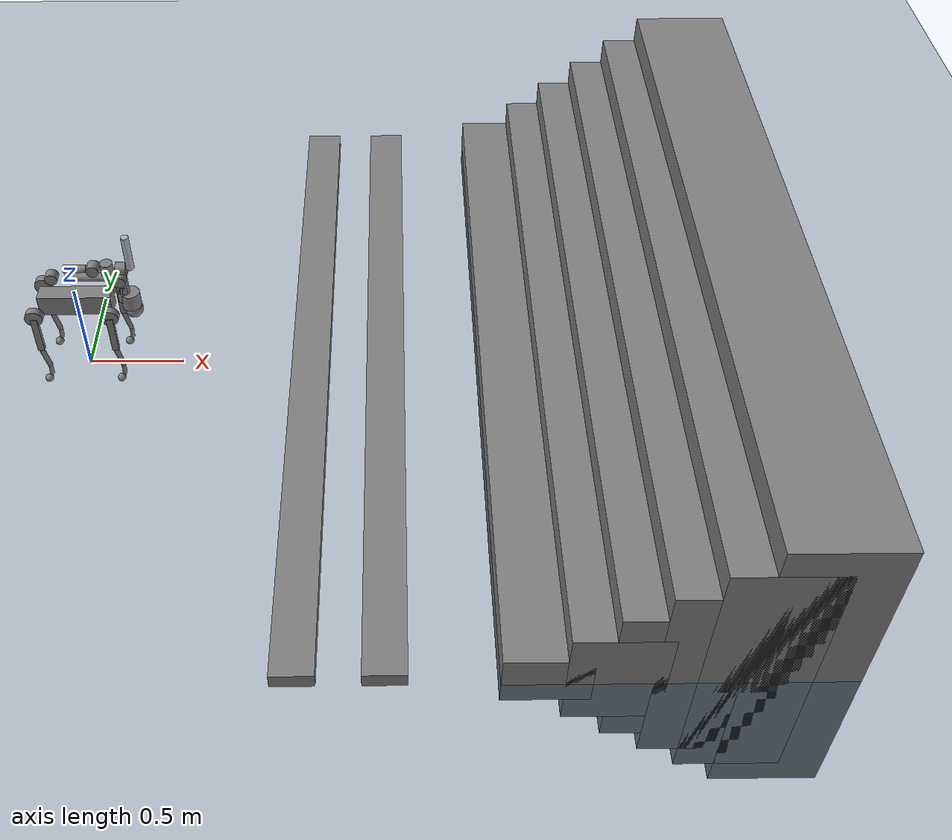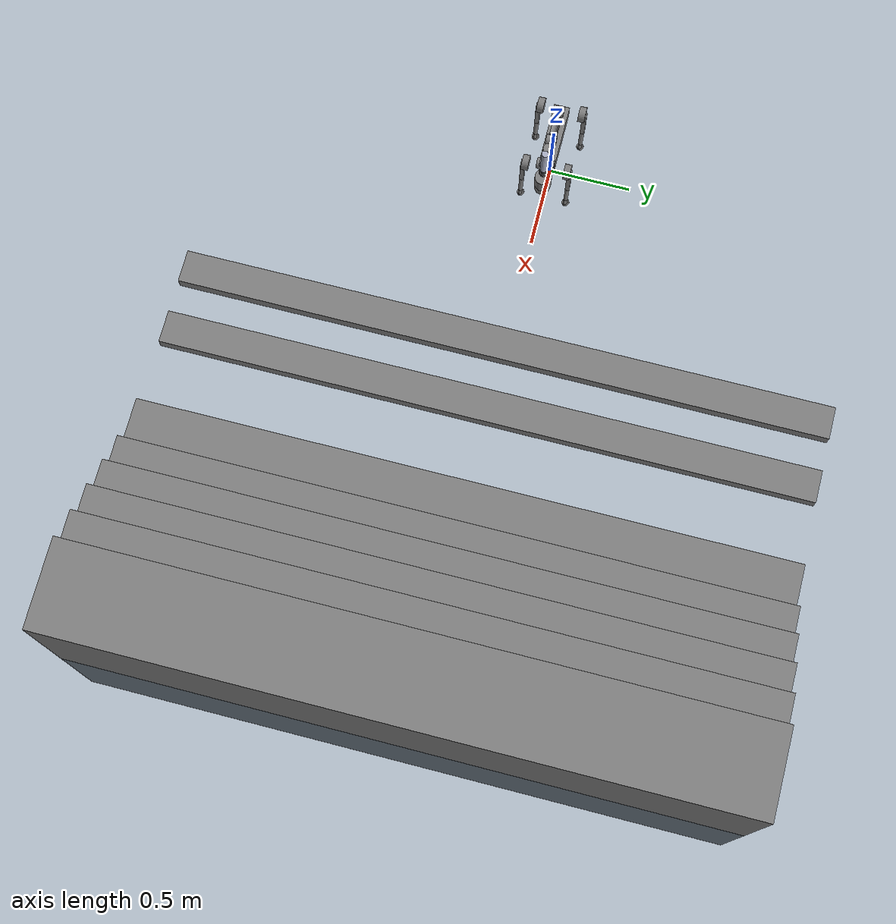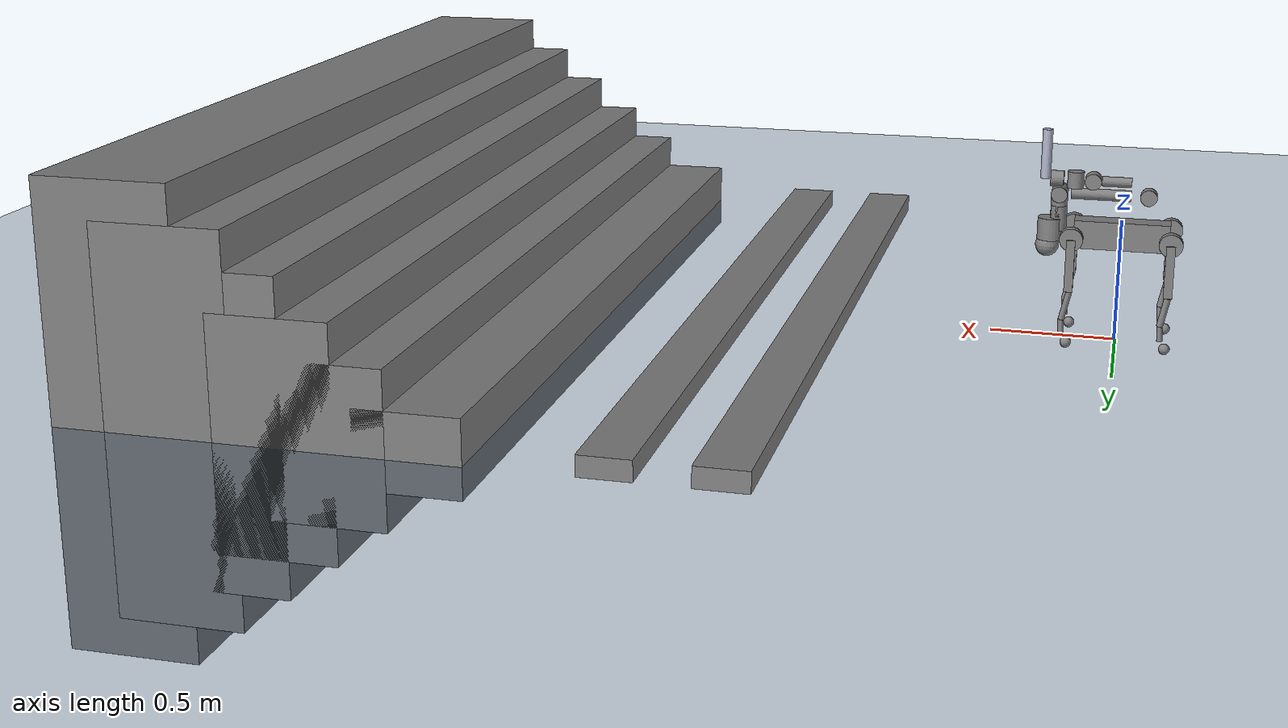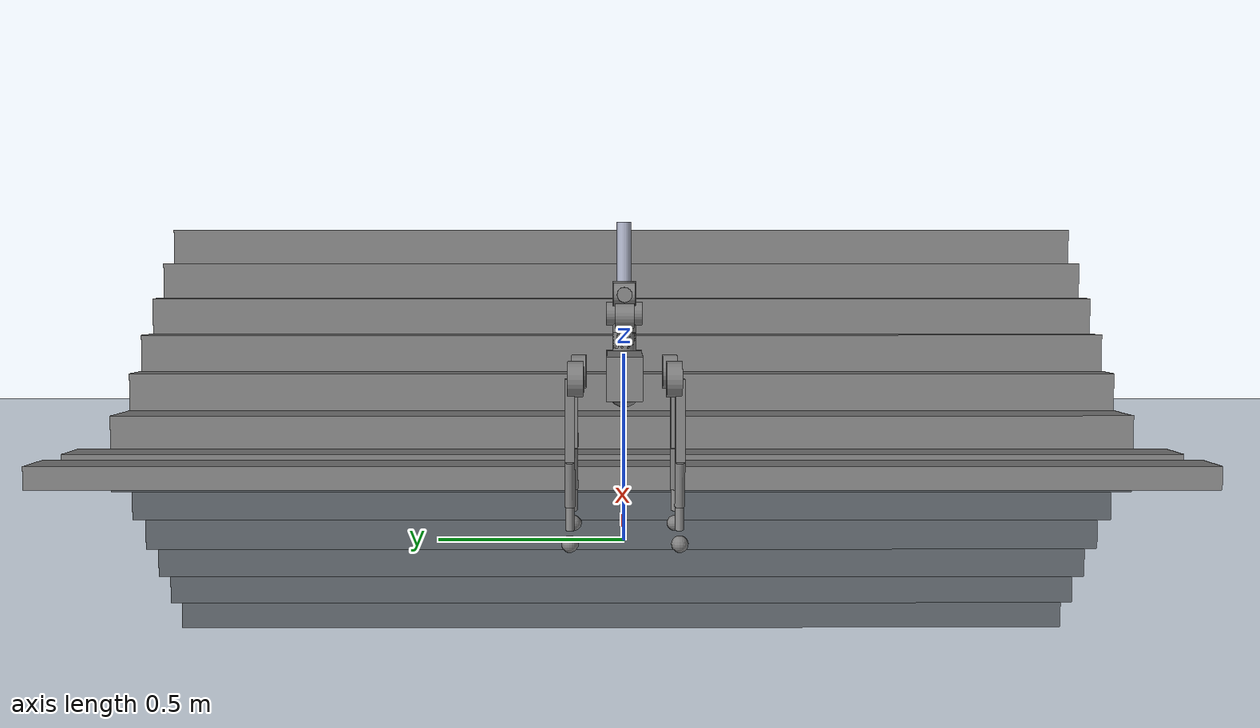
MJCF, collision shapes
<mujoco model="go2 scene">
  <include file="go2_arm_dof1.xml"/>

  <statistic center="0 0 0.1" extent="0.8"/>

  <visual>
    <headlight diffuse="0.6 0.6 0.6" ambient="0.3 0.3 0.3" specular="0 0 0"/>
    <rgba haze="0.15 0.25 0.35 1"/>
    <global azimuth="-130" elevation="-20"/>
  </visual>

  <asset>
    <texture type="skybox" builtin="gradient" rgb1="0.3 0.5 0.7" rgb2="0 0 0" width="512" height="3072"/>
    <texture type="2d" name="groundplane" builtin="checker" mark="edge" rgb1="0.2 0.3 0.4" rgb2="0.1 0.2 0.3"
      markrgb="0.8 0.8 0.8" width="300" height="300"/>
    <material name="groundplane" texture="groundplane" texuniform="true" texrepeat="5 5" reflectance="0.2"/>
  </asset>

  <worldbody>
    <light pos="0 0 1.5" dir="0 0 -1" directional="true"/>
    <geom name="floor" size="0 0 0.05" type="plane" material="groundplane" friction="1.0 0.005 0.0001"/>

    <geom pos="1.2 0 0.04" type="box"  size="0.1 2 0.04" quat="1.0 0 0 0"/>
    <geom pos="1.6 0 0.04" type="box"  size="0.1 2 0.04" quat="1.0 0 0 0"/>

    <geom pos="2.3 0 0.02" type="box"  size="0.2 2 0.15" quat="1.0 0 0 0"/>
    <geom pos="2.6 0 0.02" type="box"  size="0.22 2 0.3" quat="1.0 0 0 0"/>
    <geom pos="2.8 0 0.02" type="box"  size="0.23 2 0.45" quat="1.0 0 0 0"/>
    <geom pos="3 0 0.02" type="box"  size="0.24 2 0.6" quat="1.0 0 0 0"/>
    <geom pos="3.2 0 0.02" type="box"  size="0.25 2 0.75" quat="1.0 0 0 0"/>
    <geom pos="3.4 0 0.02" type="box"  size="0.26 2 0.9" quat="1.0 0 0 0"/>
  </worldbody>
</mujoco>

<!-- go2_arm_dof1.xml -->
<mujoco model="go2">
  <compiler angle="radian" meshdir="assets" autolimits="true" />

  <option cone="elliptic" impratio="100" />

  <default>

    <default class="go2">
      <geom friction="0.4" margin="0.001" condim="1"/>
      <joint axis="0 1 0" damping="0.1" armature="0.01" frictionloss="0.2"/>
      <motor ctrlrange="-23.7 23.7"/>

      <default class="abduction">
        <joint axis="1 0 0" range="-1.0472 1.0472"/>
      </default>

      <default class="hip">
        <default class="front_hip">
          <joint range="-1.5708 3.4907"/>
        </default>
        <default class="back_hip">
          <joint range="-0.5236 4.5379"/>
        </default>
      </default>

      <default class="knee">
        <joint range="-2.7227 -0.83776"/>
        <motor ctrlrange="-45.43 45.43"/>
      </default>

      <default class="visual">
        <geom type="mesh" contype="0" conaffinity="0" group="2"/>
      </default>
      <default class="collision">
        <geom group="3"/>
        <default class="foot">
          <geom size="0.022" pos="-0.002 0 -0.213" priority="1" condim="6"
            friction="1 0.02 0.01"/>
        </default>
      </default>

      <default class="arm1">
        <joint range="-2.61799387799 -2.61799387799"/>
        <motor ctrlrange="-45.43 45.43"/>
      </default>

      <default class="arm2">
        <joint range="0.0 2.96705972839"/>
        <motor ctrlrange="-45.43 45.43"/>
      </default>

      <default class="arm3">
        <joint range="-2.87979326579 0.0"/>
        <motor ctrlrange="-45.43 45.43"/>
      </default>

      <default class="arm4">
        <joint range="-1.51843644924 1.51843644924"/>
        <motor ctrlrange="-45.43 45.43"/>
      </default>

      <default class="arm5">
        <joint range="-1.34390352404 1.34390352404"/>
        <motor ctrlrange="-45.43 45.43"/>
      </default>

      <default class="arm6">
        <joint range="-2.79252680319 2.79252680319"/>
        <motor ctrlrange="-45.43 45.43"/>
      </default>
    </default>

  </default>

  <asset>
    <material name="metal" rgba=".9 .95 .95 1" />
    <material name="black" rgba="0 0 0 1" />
    <material name="white" rgba="1 1 1 1" />
    <material name="gray" rgba="0.671705 0.692426 0.774270 1" />

    <mesh file="z1_Link00.obj" />
    <mesh file="z1_Link01.obj" />
    <mesh file="z1_Link02.obj" />
    <mesh file="z1_Link03.obj" />
    <mesh file="z1_Link04.obj" />
    <mesh file="z1_Link05.obj" />
    <mesh file="z1_Link06.obj" />
    <mesh file="hip.obj" />
    <mesh file="thigh.obj" />
    <mesh file="thigh_mirror.obj" />
    <mesh file="trunk.obj" />

    <mesh file="base_0.obj" />
    <mesh file="base_1.obj" />
    <mesh file="base_2.obj" />
    <mesh file="base_3.obj" />
    <mesh file="base_4.obj" />
    <mesh file="hip_0.obj" />
    <mesh file="hip_1.obj" />
    <mesh file="thigh_0.obj" />
    <mesh file="thigh_1.obj" />
    <mesh file="thigh_mirror_0.obj" />
    <mesh file="thigh_mirror_1.obj" />
    <mesh file="calf_0.obj" />
    <mesh file="calf_1.obj" />
    <mesh file="calf_mirror_0.obj" />
    <mesh file="calf_mirror_1.obj" />
    <mesh file="foot.obj" />

  </asset>

  <worldbody>
    <body name="base_link" pos="0 0 0.445" childclass="go2">
      <inertial pos="0.021112 0 -0.005366" quat="-0.000543471 0.713435 -0.00173769 0.700719"
        mass="6.921"
        diaginertia="0.107027 0.0980771 0.0244531" />
      <freejoint />
      <geom mesh="base_0" material="black" class="visual" />
      <geom mesh="base_1" material="black" class="visual" />
      <geom mesh="base_2" material="black" class="visual" />
      <geom mesh="base_3" material="white" class="visual" />
      <geom mesh="base_4" material="gray" class="visual" />
      <geom size="0.1881 0.04675 0.057" type="box" class="collision" />
      <geom size="0.05 0.045" pos="0.285 0 0.01" type="cylinder" class="collision" />
      <geom size="0.047" pos="0.293 0 -0.06" class="collision" />
      <site name="imu" pos="-0.02557 0 0.04232" />

      <body name="link00" pos="0.2535 0 0.056">
          <inertial pos="2.47e-06 -0.00025198 0.0231717" quat="0.708578 0.705633 0.000281462 -0.000355927" mass="0.673326" diaginertia="0.00128328 0.000839362 0.000719308" />
          <geom size="0.0325 0.051" type="cylinder" />
          <geom mesh="z1_Link00" material="gray" class="visual" />

          <body name="link01" pos="0 0 0.0585">
                <inertial pos="2.47e-06 -0.00025198 0.0231717" quat="0.708578 0.705633 0.000281462 -0.000355927" mass="0.673326" diaginertia="0.00128328 0.000839362 0.000719308" />
                <joint name="joint1" class="arm1" pos="0 0 0" axis="0 0 1" limited="true" range="-2.61799 2.61799" damping="1" frictionloss="1" />
                <geom size="0.0325 0.051" type="cylinder" />
                <geom mesh="z1_Link01" material="gray" class="visual" />

                <body name="link02" pos="0 0 0.045">
                    <inertial pos="-0.110126 0.00240029 0.00158266" quat="0.00748058 0.707092 -0.0114473 0.70699" mass="1.19132" diaginertia="0.0246612 0.0243113 0.00100468" />
                    <joint name="joint2"  class="arm2" pos="0 0 0" axis="0 1 0" limited="true" range="0 2.96706" damping="2" frictionloss="2" />
                    <geom size="0.0325 0.051" quat="0.707107 0.707107 0 0" type="cylinder" />
                    <geom size="0.0225 0.1175" pos="-0.1625 0 0" quat="0.707107 0 0.707107 0" type="cylinder" />
                    <geom size="0.0325 0.0255" pos="-0.35 0 0" quat="0.707107 0.707107 0 0" type="cylinder" />
                    <geom mesh="z1_Link02" material="gray" class="visual" />

                    <body name="link03" pos="-0.35 0 0">
                        <inertial pos="0.106092 -0.00541815 0.0347638" quat="0.540557 0.443575 0.426319 0.573839" mass="0.839409" diaginertia="0.00954365 0.00938711 0.000558432" />
                        <joint name="joint3" class="arm3" pos="0 0 0" axis="0 1 0" limited="true" range="-2.87979 0" damping="1" frictionloss="1" />
                        <geom size="0.02 0.058" pos="0.128 0 0.055" quat="0.707107 0 0.707107 0" type="cylinder" />
                        <geom size="0.0325 0.0295" pos="0.2205 0 0.055" quat="0.5 -0.5 0.5 0.5" type="cylinder" />
                        <geom mesh="z1_Link03" material="gray" class="visual" />
                        <body name="link04" pos="0.218 0 0.057">
                            <inertial pos="0.0436668 0.00364738 -0.00170192" quat="0.0390835 0.726445 -0.0526787 0.684087" mass="0.564046" diaginertia="0.000981656 0.00094053 0.000302655" />
                            <joint name="joint4" class="arm4" pos="0 0 0" axis="0 1 0" limited="true" range="-1.51844 1.51844" damping="1" frictionloss="1" />
                            <geom size="0.0325 0.0335" pos="0.072 0 0" type="cylinder" />
                            <geom mesh="z1_Link04" material="gray" class="visual" />
                            <body name="link05" pos="0.07 0 0">
                                <inertial pos="0.0312153 0 0.00646316" quat="0.462205 0.535209 0.53785 0.45895" mass="0.389385" diaginertia="0.000558961 0.000547317 0.000167332" />
                                <joint name="joint5" class="arm5" pos="0 0 0" axis="0 0 1" limited="true" range="-1.3439 1.3439" damping="1" frictionloss="1" />
                                <geom mesh="z1_Link05" material="gray" class="visual" />
                                <body name="link06" pos="0.0492 0 0">
                                    <inertial pos="0.0241569 -0.00017355 -0.00143876" quat="0.998779 0.0457735 -0.00663717 0.0173548" mass="0.288758" diaginertia="0.00018333 0.000147464 0.000146786" />
                                    <joint name="joint6" class="arm6" pos="0 0 0" axis="1 0 0" limited="true" range="-2.79253 2.79253" damping="1" frictionloss="1" />
                                    <geom size="0.0325 0.0255" pos="0.0255 0 0" quat="0.707107 0 0.707107 0" type="cylinder" />
                                    <geom mesh="z1_Link06" material="gray" class="visual" />

                                    <body name="universal_link" pos="0.073 0 0">
                                      <inertial pos="0 0 0.1" mass="0.25" diaginertia="0.0009333 0.0009333 0.00005" />
                                      <!-- universal_joint_x: Passive joint with no limits -->
                                      <joint name="universal_joint_x" pos="0 0 0" axis="1 0 0" damping="0" frictionloss="0"/>
                                      <geom size="0.02 0.1" pos="0 0 0.1" type="cylinder" rgba="0.671705 0.692426 0.774270 1" class="visual"/>
                                  </body>
                                </body>
                            </body>
                        </body>
                    </body>
                </body>
            </body>
        </body>

      <body name="FL_hip" pos="0.1934 0.0465 0">
        <inertial pos="-0.0054 0.00194 -0.000105" quat="0.497014 0.499245 0.505462 0.498237"
          mass="0.678"
          diaginertia="0.00088403 0.000596003 0.000479967" />
        <joint name="FL_hip_joint" class="abduction" />
        <geom mesh="hip_0" material="metal" class="visual" />
        <geom mesh="hip_1" material="gray" class="visual" />
        <geom size="0.046 0.02" pos="0 0.08 0" quat="1 1 0 0" type="cylinder" class="collision" />
        <body name="FL_thigh" pos="0 0.0955 0">
          <inertial pos="-0.00374 -0.0223 -0.0327" quat="0.829533 0.0847635 -0.0200632 0.551623"
            mass="1.152"
            diaginertia="0.00594973 0.00584149 0.000878787" />
          <joint name="FL_thigh_joint" class="front_hip" />
          <geom mesh="thigh_0" material="metal" class="visual" />
          <geom mesh="thigh_1" material="gray" class="visual" />
          <geom size="0.1065 0.01225 0.017" pos="0 0 -0.1065" quat="0.707107 0 0.707107 0"
            type="box" class="collision" />
          <body name="FL_calf" pos="0 0 -0.213">
            <inertial pos="0.00629595 -0.000622121 -0.141417"
              quat="0.710672 0.00154099 -0.00450087 0.703508"
              mass="0.241352" diaginertia="0.0014901 0.00146356 5.31397e-05" />
            <joint name="FL_calf_joint" class="knee" />
            <geom mesh="calf_0" material="gray" class="visual" />
            <geom mesh="calf_1" material="black" class="visual" />
            <geom size="0.012 0.06" pos="0.008 0 -0.06" quat="0.994493 0 -0.104807 0"
              type="cylinder" class="collision" />
            <geom size="0.011 0.0325" pos="0.02 0 -0.148" quat="0.999688 0 0.0249974 0"
              type="cylinder" class="collision" />
            <geom pos="0 0 -0.213" mesh="foot" class="visual" material="black" />
            <geom name="FL" class="foot" />
            <body name="FL_foot" pos="0 0 -0.213" />
          </body>
        </body>
      </body>
      <body name="FR_hip" pos="0.1934 -0.0465 0">
        <inertial pos="-0.0054 -0.00194 -0.000105" quat="0.498237 0.505462 0.499245 0.497014"
          mass="0.678"
          diaginertia="0.00088403 0.000596003 0.000479967" />
        <joint name="FR_hip_joint" class="abduction" />
        <geom mesh="hip_0" material="metal" class="visual" quat="4.63268e-05 1 0 0" />
        <geom mesh="hip_1" material="gray" class="visual" quat="4.63268e-05 1 0 0" />
        <geom size="0.046 0.02" pos="0 -0.08 0" quat="0.707107 0.707107 0 0" type="cylinder"
          class="collision" />
        <body name="FR_thigh" pos="0 -0.0955 0">
          <inertial pos="-0.00374 0.0223 -0.0327" quat="0.551623 -0.0200632 0.0847635 0.829533"
            mass="1.152"
            diaginertia="0.00594973 0.00584149 0.000878787" />
          <joint name="FR_thigh_joint" class="front_hip" />
          <geom mesh="thigh_mirror_0" material="metal" class="visual" />
          <geom mesh="thigh_mirror_1" material="gray" class="visual" />
          <geom size="0.1065 0.01225 0.017" pos="0 0 -0.1065" quat="0.707107 0 0.707107 0"
            type="box" class="collision" />
          <body name="FR_calf" pos="0 0 -0.213">
            <inertial pos="0.00629595 0.000622121 -0.141417"
              quat="0.703508 -0.00450087 0.00154099 0.710672"
              mass="0.241352" diaginertia="0.0014901 0.00146356 5.31397e-05" />
            <joint name="FR_calf_joint" class="knee" />
            <geom mesh="calf_mirror_0" material="gray" class="visual" />
            <geom mesh="calf_mirror_1" material="black" class="visual" />
            <geom size="0.013 0.06" pos="0.01 0 -0.06" quat="0.995004 0 -0.0998334 0"
              type="cylinder" class="collision" />
            <geom size="0.011 0.0325" pos="0.02 0 -0.148" quat="0.999688 0 0.0249974 0"
              type="cylinder" class="collision" />
            <geom pos="0 0 -0.213" mesh="foot" class="visual" material="black" />
            <geom name="FR" class="foot" />
            <body name="FR_foot" pos="0 0 -0.213" />
          </body>
        </body>
      </body>
      <body name="RL_hip" pos="-0.1934 0.0465 0">
        <inertial pos="0.0054 0.00194 -0.000105" quat="0.505462 0.498237 0.497014 0.499245"
          mass="0.678"
          diaginertia="0.00088403 0.000596003 0.000479967" />
        <joint name="RL_hip_joint" class="abduction" />
        <geom mesh="hip_0" material="metal" class="visual" quat="4.63268e-05 0 1 0" />
        <geom mesh="hip_1" material="gray" class="visual" quat="4.63268e-05 0 1 0" />
        <geom size="0.046 0.02" pos="0 0.08 0" quat="0.707107 0.707107 0 0" type="cylinder"
          class="collision" />
        <body name="RL_thigh" pos="0 0.0955 0">
          <inertial pos="-0.00374 -0.0223 -0.0327" quat="0.829533 0.0847635 -0.0200632 0.551623"
            mass="1.152"
            diaginertia="0.00594973 0.00584149 0.000878787" />
          <joint name="RL_thigh_joint" class="back_hip" />
          <geom mesh="thigh_0" material="metal" class="visual" />
          <geom mesh="thigh_1" material="gray" class="visual" />
          <geom size="0.1065 0.01225 0.017" pos="0 0 -0.1065" quat="0.707107 0 0.707107 0"
            type="box" class="collision" />
          <body name="RL_calf" pos="0 0 -0.213">
            <inertial pos="0.00629595 -0.000622121 -0.141417"
              quat="0.710672 0.00154099 -0.00450087 0.703508"
              mass="0.241352" diaginertia="0.0014901 0.00146356 5.31397e-05" />
            <joint name="RL_calf_joint" class="knee" />
            <geom mesh="calf_0" material="gray" class="visual" />
            <geom mesh="calf_1" material="black" class="visual" />
            <geom size="0.013 0.06" pos="0.01 0 -0.06" quat="0.995004 0 -0.0998334 0"
              type="cylinder" class="collision" />
            <geom size="0.011 0.0325" pos="0.02 0 -0.148" quat="0.999688 0 0.0249974 0"
              type="cylinder" class="collision" />
            <geom pos="0 0 -0.213" mesh="foot" class="visual" material="black" />
            <geom name="RL" class="foot" />
            <body name="RL_foot" pos="0 0 -0.213" />
          </body>
        </body>
      </body>
      <body name="RR_hip" pos="-0.1934 -0.0465 0">
        <inertial pos="0.0054 -0.00194 -0.000105" quat="0.499245 0.497014 0.498237 0.505462"
          mass="0.678"
          diaginertia="0.00088403 0.000596003 0.000479967" />
        <joint name="RR_hip_joint" class="abduction" />
        <geom mesh="hip_0" material="metal" class="visual"
          quat="2.14617e-09 4.63268e-05 4.63268e-05 -1" />
        <geom mesh="hip_1" material="gray" class="visual"
          quat="2.14617e-09 4.63268e-05 4.63268e-05 -1" />
        <geom size="0.046 0.02" pos="0 -0.08 0" quat="0.707107 0.707107 0 0" type="cylinder"
          class="collision" />
        <body name="RR_thigh" pos="0 -0.0955 0">
          <inertial pos="-0.00374 0.0223 -0.0327" quat="0.551623 -0.0200632 0.0847635 0.829533"
            mass="1.152"
            diaginertia="0.00594973 0.00584149 0.000878787" />
          <joint name="RR_thigh_joint" class="back_hip" />
          <geom mesh="thigh_mirror_0" material="metal" class="visual" />
          <geom mesh="thigh_mirror_1" material="gray" class="visual" />
          <geom size="0.1065 0.01225 0.017" pos="0 0 -0.1065" quat="0.707107 0 0.707107 0"
            type="box" class="collision" />
          <body name="RR_calf" pos="0 0 -0.213">
            <inertial pos="0.00629595 0.000622121 -0.141417"
              quat="0.703508 -0.00450087 0.00154099 0.710672"
              mass="0.241352" diaginertia="0.0014901 0.00146356 5.31397e-05" />
            <joint name="RR_calf_joint" class="knee" />
            <geom mesh="calf_mirror_0" material="gray" class="visual" />
            <geom mesh="calf_mirror_1" material="black" class="visual" />
            <geom size="0.013 0.06" pos="0.01 0 -0.06" quat="0.995004 0 -0.0998334 0"
              type="cylinder" class="collision" />
            <geom size="0.011 0.0325" pos="0.02 0 -0.148" quat="0.999688 0 0.0249974 0"
              type="cylinder" class="collision" />
            <geom pos="0 0 -0.213" mesh="foot" class="visual" material="black" />
            <geom name="RR" class="foot" />
            <body name="RR_foot" pos="0 0 -0.213" />
          </body>
        </body>
      </body>
    </body>
  </worldbody>

  <actuator>
    <motor class="abduction" name="FR_hip" joint="FR_hip_joint" />
    <motor class="hip" name="FR_thigh" joint="FR_thigh_joint" />
    <motor class="knee" name="FR_calf" joint="FR_calf_joint" />
    <motor class="abduction" name="FL_hip" joint="FL_hip_joint" />
    <motor class="hip" name="FL_thigh" joint="FL_thigh_joint" />
    <motor class="knee" name="FL_calf" joint="FL_calf_joint" />
    <motor class="abduction" name="RR_hip" joint="RR_hip_joint" />
    <motor class="hip" name="RR_thigh" joint="RR_thigh_joint" />
    <motor class="knee" name="RR_calf" joint="RR_calf_joint" />
    <motor class="abduction" name="RL_hip" joint="RL_hip_joint" />
    <motor class="hip" name="RL_thigh" joint="RL_thigh_joint" />
    <motor class="knee" name="RL_calf" joint="RL_calf_joint" />

    <motor class="arm1" name="link01" joint="joint1"/>
    <motor class="arm2" name="link02" joint="joint2"/>
    <motor class="arm3" name="link03" joint="joint3"/>
    <motor class="arm4" name="link04" joint="joint4"/>
    <motor class="arm5" name="link05" joint="joint5"/>
    <motor class="arm6" name="link06" joint="joint6"/>

  </actuator>

  <sensor>
    <jointpos name="FR_hip_pos" joint="FR_hip_joint" />
    <jointpos name="FR_thigh_pos" joint="FR_thigh_joint" />
    <jointpos name="FR_calf_pos" joint="FR_calf_joint" />
    <jointpos name="FL_hip_pos" joint="FL_hip_joint" />
    <jointpos name="FL_thigh_pos" joint="FL_thigh_joint" />
    <jointpos name="FL_calf_pos" joint="FL_calf_joint" />
    <jointpos name="RR_hip_pos" joint="RR_hip_joint" />
    <jointpos name="RR_thigh_pos" joint="RR_thigh_joint" />
    <jointpos name="RR_calf_pos" joint="RR_calf_joint" />
    <jointpos name="RL_hip_pos" joint="RL_hip_joint" />
    <jointpos name="RL_thigh_pos" joint="RL_thigh_joint" />
    <jointpos name="RL_calf_pos" joint="RL_calf_joint" />

    <jointpos name="z1_Link01_pos" joint="joint1" />
    <jointpos name="z1_Link02_pos" joint="joint2" />
    <jointpos name="z1_Link03_pos" joint="joint3" />
    <jointpos name="z1_Link04_pos" joint="joint4" />
    <jointpos name="z1_Link05_pos" joint="joint5" />
    <jointpos name="z1_Link06_pos" joint="joint6" />
    <jointpos name="universal_pos" joint="universal_joint_x" />

    <jointvel name="FR_hip_vel" joint="FR_hip_joint" />
    <jointvel name="FR_thigh_vel" joint="FR_thigh_joint" />
    <jointvel name="FR_calf_vel" joint="FR_calf_joint" />
    <jointvel name="FL_hip_vel" joint="FL_hip_joint" />
    <jointvel name="FL_thigh_vel" joint="FL_thigh_joint" />
    <jointvel name="FL_calf_vel" joint="FL_calf_joint" />
    <jointvel name="RR_hip_vel" joint="RR_hip_joint" />
    <jointvel name="RR_thigh_vel" joint="RR_thigh_joint" />
    <jointvel name="RR_calf_vel" joint="RR_calf_joint" />
    <jointvel name="RL_hip_vel" joint="RL_hip_joint" />
    <jointvel name="RL_thigh_vel" joint="RL_thigh_joint" />
    <jointvel name="RL_calf_vel" joint="RL_calf_joint" />

    <jointvel name="z1_linkt01_vel" joint="joint1" />
    <jointvel name="z1_linkt02_vel" joint="joint2" />
    <jointvel name="z1_linkt03_vel" joint="joint3" />
    <jointvel name="z1_linkt04_vel" joint="joint4" />
    <jointvel name="z1_linkt05_vel" joint="joint5" />
    <jointvel name="z1_linkt06_vel" joint="joint6" />
    <jointvel name="universal_vel" joint="universal_joint_x"/>

    <jointactuatorfrc name="FR_hip_torque" joint="FR_hip_joint" noise="0.01" />
    <jointactuatorfrc name="FR_thigh_torque" joint="FR_thigh_joint" noise="0.01" />
    <jointactuatorfrc name="FR_calf_torque" joint="FR_calf_joint" noise="0.01" />
    <jointactuatorfrc name="FL_hip_torque" joint="FL_hip_joint" noise="0.01" />
    <jointactuatorfrc name="FL_thigh_torque" joint="FL_thigh_joint" noise="0.01" />
    <jointactuatorfrc name="FL_calf_torque" joint="FL_calf_joint" noise="0.01" />
    <jointactuatorfrc name="RR_hip_torque" joint="RR_hip_joint" noise="0.01" />
    <jointactuatorfrc name="RR_thigh_torque" joint="RR_thigh_joint" noise="0.01" />
    <jointactuatorfrc name="RR_calf_torque" joint="RR_calf_joint" noise="0.01" />
    <jointactuatorfrc name="RL_hip_torque" joint="RL_hip_joint" noise="0.01" />
    <jointactuatorfrc name="RL_thigh_torque" joint="RL_thigh_joint" noise="0.01" />
    <jointactuatorfrc name="RL_calf_torque" joint="RL_calf_joint" noise="0.01" />

    <jointactuatorfrc name="z1_Link01_torque" joint="joint1" noise="0.01" />
    <jointactuatorfrc name="z1_Link02_torque" joint="joint2" noise="0.01" />
    <jointactuatorfrc name="z1_Link03_torque" joint="joint3" noise="0.01" />
    <jointactuatorfrc name="z1_Link04_torque" joint="joint4" noise="0.01" />
    <jointactuatorfrc name="z1_Link05_torque" joint="joint5" noise="0.01" />
    <jointactuatorfrc name="z1_Link06_torque" joint="joint6" noise="0.01" />
     <jointactuatorfrc name="universal_torque" joint="universal_joint_x" noise="0.01"/>

    <framequat name="imu_quat" objtype="site" objname="imu" />
    <gyro name="imu_gyro" site="imu" />
    <accelerometer name="imu_acc" site="imu" />

    <framepos name="frame_pos" objtype="site" objname="imu" />
    <framelinvel name="frame_vel" objtype="site" objname="imu" />
  </sensor>

  <keyframe>
    <key name="home" qpos="0 0 0.27 1 0 0 0 0 0.9 -1.8 0 0.9 -1.8 0 0.9 -1.8 0 0.9 -1.8 0 0 0 0 0 0 3.14"
      ctrl="0 0.9 -1.8 0 0.9 -1.8 0 0.9 -1.8 0 0.9 -1.8 0 0 0 0 0 0" />
  </keyframe>

</mujoco>
